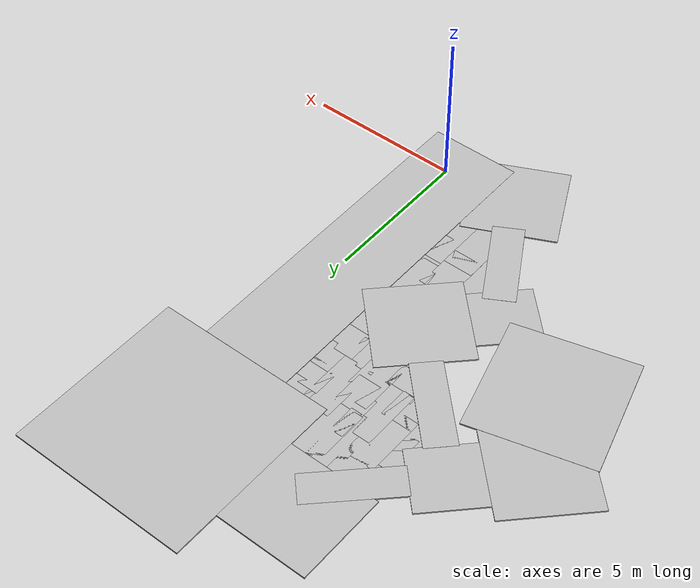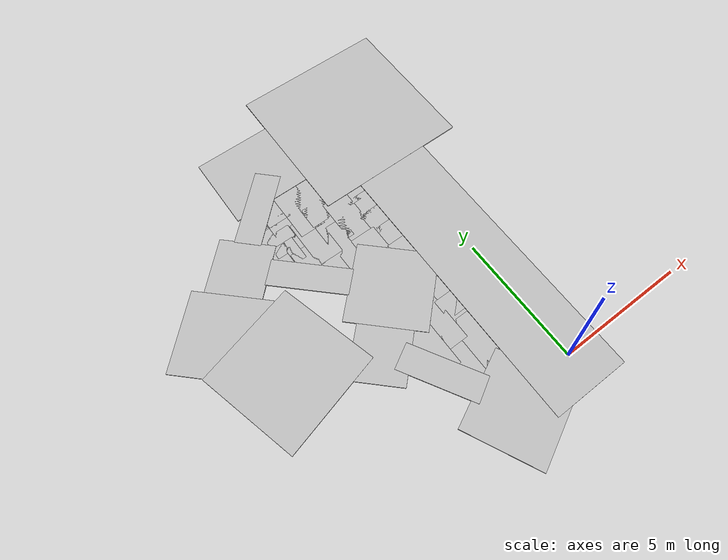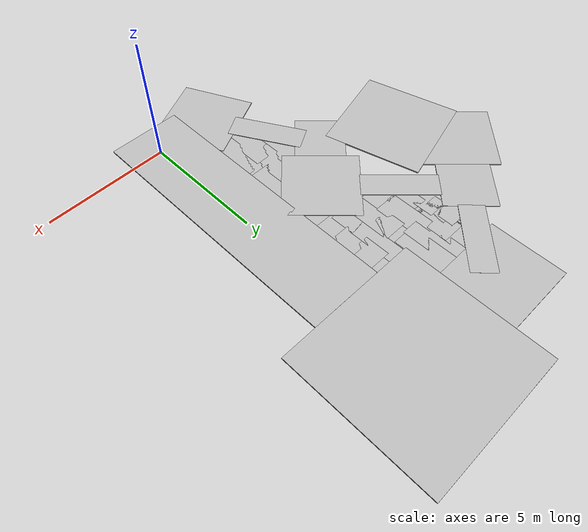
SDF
<sdf version="1.6">
 <world name="default">
  <light name="sun" type="directional">
   <pose>0 0 10 0 -0 0</pose>
   <diffuse>0.8 0.8 0.8 1</diffuse>
   <specular>0.2 0.2 0.2 1</specular>
   <attenuation>
    <range>1000</range>
    <constant>0.9</constant>
    <linear>0.01</linear>
    <quadratic>0.001</quadratic>
   </attenuation>
   <direction>-0.5 0.1 -0.9</direction>
  </light>
  <gravity>0 0 -9.8</gravity>
  <magnetic_field>6e-06 2.3e-05 -4.2e-05</magnetic_field>
  <atmosphere type="adiabatic"/>
  <physics name="default_physics" default="0" type="ode">
   <max_step_size>0.001</max_step_size>
   <real_time_factor>1</real_time_factor>
   <real_time_update_rate>1000</real_time_update_rate>
  </physics>
  <scene><ambient>0.4 0.4 0.4 1</ambient><background>0.7 0.7 0.7 1</background><shadows>1</shadows></scene>
  <audio><device>default</device></audio>
  <spherical_coordinates>
   <surface_model>EARTH_WGS84</surface_model>
   <latitude_deg>0</latitude_deg>
   <longitude_deg>0</longitude_deg>
   <elevation>0</elevation>
   <heading_deg>0</heading_deg>
  </spherical_coordinates>
  <model name="start_w400_black">
   <static>1</static>
   <link name="link">
    <collision name="collision">
     <geometry><box><size>11 3 0.05</size></box></geometry>
     <surface><friction><ode><mu>100</mu><mu2>50</mu2></ode></friction></surface>
    </collision>
    <visual name="visual">
     <cast_shadows>0</cast_shadows>
     <geometry><box><size>11 3 0.05</size></box></geometry>
     <material>
      <script>
       <uri>model://start_w400_black/materials/scripts</uri>
       <uri>model://start_w400_black/materials/textures/</uri>
       <name>start_w400_black/Image</name>
      </script>
     </material>
    </visual>
   </link>
   <pose>-0.193338 4.17342 0 0 -0 1.57079</pose>
  </model>
  <model name="left_curve_r300_a90_00">
   <static>1</static>
   <link name="link">
    <collision name="collision">
     <geometry><box><size>6 6 0.05</size></box></geometry>
     <surface><friction><ode><mu>100</mu><mu2>50</mu2></ode></friction></surface>
    </collision>
    <visual name="visual">
     <cast_shadows>0</cast_shadows>
     <geometry><box><size>6 6 0.05</size></box></geometry>
     <material>
      <script>
       <uri>model://left_curve_r300_a90_00/materials/scripts</uri>
       <uri>model://left_curve_r300_a90_00/materials/textures/</uri>
       <name>left_curve_r300_a90_00/Image</name>
      </script>
     </material>
    </visual>
   </link>
   <pose>-0.193023 12.674 0 0 -0 3.14159</pose>
  </model>
  <model name="left_curve_r150_a45_030">
   <static>1</static>
   <link name="link">
    <collision name="collision">
     <geometry><box><size>3 3 0.05</size></box></geometry>
     <surface><friction><ode><mu>100</mu><mu2>50</mu2></ode></friction></surface>
    </collision>
    <visual name="visual">
     <cast_shadows>0</cast_shadows>
     <geometry><box><size>3 3 0.05</size></box></geometry>
     <material>
      <script>
       <uri>model://left_curve_r150_a45_030/materials/scripts</uri>
       <uri>model://left_curve_r150_a45_030/materials/textures/</uri>
       <name>left_curve_r150_a45_030/Image</name>
      </script>
     </material>
    </visual>
   </link>
   <pose>-4.6927 12.6748 0 0 0 -1.5708</pose>
  </model>
  <model name="stop_crossing">
   <static>1</static>
   <link name="link">
    <collision name="collision">
     <geometry><box><size>2.1 2.1 0.05</size></box></geometry>
     <surface><friction><ode><mu>100</mu><mu2>50</mu2></ode></friction></surface>
    </collision>
    <visual name="visual">
     <cast_shadows>0</cast_shadows>
     <geometry><box><size>2.1 2.1 0.05</size></box></geometry>
     <material>
      <script>
       <uri>model://stop_crossing/materials/scripts</uri>
       <uri>model://stop_crossing/materials/textures/</uri>
       <name>stop_crossing/Image</name>
      </script>
     </material>
    </visual>
   </link>
   <pose>-7.10184 9.42657 0 0 -0 0.789918</pose>
  </model>
  <model name="straight_300_o_25">
   <static>1</static>
   <link name="link">
    <collision name="collision">
     <geometry><box><size>3 1 0.05</size></box></geometry>
     <surface><friction><ode><mu>100</mu><mu2>50</mu2></ode></friction></surface>
    </collision>
    <visual name="visual">
     <cast_shadows>0</cast_shadows>
     <geometry><box><size>3 1 0.05</size></box></geometry>
     <material>
      <script>
       <uri>model://straight_300_o_25/materials/scripts</uri>
       <uri>model://straight_300_o_25/materials/textures/</uri>
       <name>straight_300_o_25/Image</name>
      </script>
     </material>
    </visual>
   </link>
   <pose>-5.32382 11.1876 0.001 0 -0 0.774294</pose>
  </model>
  <model name="straight_300_o_25_0">
   <static>1</static>
   <link name="link">
    <collision name="collision">
     <geometry><box><size>3 1 0.05</size></box></geometry>
     <surface><friction><ode><mu>100</mu><mu2>50</mu2></ode></friction></surface>
    </collision>
    <visual name="visual">
     <cast_shadows>0</cast_shadows>
     <geometry><box><size>3 1 0.05</size></box></geometry>
     <material>
      <script>
       <uri>model://straight_300_o_25/materials/scripts</uri>
       <uri>model://straight_300_o_25/materials/textures/</uri>
       <name>straight_300_o_25/Image</name>
      </script>
     </material>
    </visual>
   </link>
   <pose>-5.32432 7.66399 0.00145 0 0 -0.781825</pose>
  </model>
  <model name="right_curve_r150_a90_o30">
   <static>1</static>
   <link name="link">
    <collision name="collision">
     <geometry><box><size>3 3 0.05</size></box></geometry>
     <surface><friction><ode><mu>100</mu><mu2>50</mu2></ode></friction></surface>
    </collision>
    <visual name="visual">
     <cast_shadows>0</cast_shadows>
     <geometry><box><size>3 3 0.05</size></box></geometry>
     <material>
      <script>
       <uri>model://right_curve_r150_a90_o30/materials/scripts</uri>
       <uri>model://right_curve_r150_a90_o30/materials/textures/</uri>
       <name>right_curve_r150_a90_o30/Image</name>
      </script>
     </material>
    </visual>
   </link>
   <pose>-3.23155 5.58171 0 0 -0 2.35677</pose>
  </model>
  <model name="left_curve_r100_a75_025">
   <static>1</static>
   <link name="link">
    <collision name="collision">
     <geometry><box><size>2 2 0.05</size></box></geometry>
     <surface><friction><ode><mu>100</mu><mu2>50</mu2></ode></friction></surface>
    </collision>
    <visual name="visual">
     <cast_shadows>0</cast_shadows>
     <geometry><box><size>2 2 0.05</size></box></geometry>
     <material>
      <script>
       <uri>model://left_curve_r100_a75_025/materials/scripts</uri>
       <uri>model://left_curve_r100_a75_025/materials/textures/</uri>
       <name>left_curve_r100_a75_025/Image</name>
      </script>
     </material>
    </visual>
   </link>
   <pose>-4.99373 3.81358 0 0 0 -0.782313</pose>
  </model>
  <model name="straight_300_o_25_0_clone">
   <static>1</static>
   <link name="link">
    <collision name="collision">
     <geometry><box><size>3 1 0.05</size></box></geometry>
     <surface><friction><ode><mu>100</mu><mu2>50</mu2></ode></friction></surface>
    </collision>
    <visual name="visual">
     <cast_shadows>0</cast_shadows>
     <geometry><box><size>3 1 0.05</size></box></geometry>
     <material>
      <script>
       <uri>model://straight_300_o_25/materials/scripts</uri>
       <uri>model://straight_300_o_25/materials/textures/</uri>
       <name>straight_300_o_25/Image</name>
      </script>
     </material>
    </visual>
   </link>
   <pose>-3.7385 2.09443 0.00145 0 -0 2.0927</pose>
  </model>
  <model name="right_curve_r150_a90_o30_clone">
   <static>1</static>
   <link name="link">
    <collision name="collision">
     <geometry><box><size>3 3 0.05</size></box></geometry>
     <surface><friction><ode><mu>100</mu><mu2>50</mu2></ode></friction></surface>
    </collision>
    <visual name="visual">
     <cast_shadows>0</cast_shadows>
     <geometry><box><size>3 3 0.05</size></box></geometry>
     <material>
      <script>
       <uri>model://right_curve_r150_a90_o30/materials/scripts</uri>
       <uri>model://right_curve_r150_a90_o30/materials/textures/</uri>
       <name>right_curve_r150_a90_o30/Image</name>
      </script>
     </material>
    </visual>
   </link>
   <pose>-2.46675 -0.335688 -0.002037 0 -0 0.452633</pose>
  </model>
  <model name="black_tile">
   <static>1</static>
   <link name="link">
    <collision name="collision">
     <geometry><plane><normal>0 0 1</normal><size>1 1</size></plane></geometry>
     <surface><friction><ode><mu>100</mu><mu2>50</mu2></ode></friction></surface>
    </collision>
    <visual name="visual">
     <cast_shadows>0</cast_shadows>
     <geometry><plane><normal>0 0 1</normal><size>1 1</size></plane></geometry>
     <material>
      <script>
       <uri>model://black_tile/materials/scripts</uri>
       <uri>model://black_tile/materials/textures/</uri>
       <name>BlackTile/Image</name>
      </script>
     </material>
    </visual>
   </link>
   <pose>-1.89661 6.48288 0 0 -0 0</pose>
  </model>
  <model name="black_tile_0">
   <static>1</static>
   <link name="link">
    <collision name="collision">
     <geometry><plane><normal>0 0 1</normal><size>1 1</size></plane></geometry>
     <surface><friction><ode><mu>100</mu><mu2>50</mu2></ode></friction></surface>
    </collision>
    <visual name="visual">
     <cast_shadows>0</cast_shadows>
     <geometry><plane><normal>0 0 1</normal><size>1 1</size></plane></geometry>
     <material>
      <script>
       <uri>model://black_tile/materials/scripts</uri>
       <uri>model://black_tile/materials/textures/</uri>
       <name>BlackTile/Image</name>
      </script>
     </material>
    </visual>
   </link>
   <pose>-2.06799 7.33697 0 0 -0 0</pose>
  </model>
  <model name="black_tile_1">
   <static>1</static>
   <link name="link">
    <collision name="collision">
     <geometry><plane><normal>0 0 1</normal><size>1 1</size></plane></geometry>
     <surface><friction><ode><mu>100</mu><mu2>50</mu2></ode></friction></surface>
    </collision>
    <visual name="visual">
     <cast_shadows>0</cast_shadows>
     <geometry><plane><normal>0 0 1</normal><size>1 1</size></plane></geometry>
     <material>
      <script>
       <uri>model://black_tile/materials/scripts</uri>
       <uri>model://black_tile/materials/textures/</uri>
       <name>BlackTile/Image</name>
      </script>
     </material>
    </visual>
   </link>
   <pose>-2.84631 7.44404 0 0 -0 0</pose>
  </model>
  <model name="black_tile_2">
   <static>1</static>
   <link name="link">
    <collision name="collision">
     <geometry><plane><normal>0 0 1</normal><size>1 1</size></plane></geometry>
     <surface><friction><ode><mu>100</mu><mu2>50</mu2></ode></friction></surface>
    </collision>
    <visual name="visual">
     <cast_shadows>0</cast_shadows>
     <geometry><plane><normal>0 0 1</normal><size>1 1</size></plane></geometry>
     <material>
      <script>
       <uri>model://black_tile/materials/scripts</uri>
       <uri>model://black_tile/materials/textures/</uri>
       <name>BlackTile/Image</name>
      </script>
     </material>
    </visual>
   </link>
   <pose>-1.95955 8.11796 0 0 -0 0</pose>
  </model>
  <model name="black_tile_3">
   <static>1</static>
   <link name="link">
    <collision name="collision">
     <geometry><plane><normal>0 0 1</normal><size>1 1</size></plane></geometry>
     <surface><friction><ode><mu>100</mu><mu2>50</mu2></ode></friction></surface>
    </collision>
    <visual name="visual">
     <cast_shadows>0</cast_shadows>
     <geometry><plane><normal>0 0 1</normal><size>1 1</size></plane></geometry>
     <material>
      <script>
       <uri>model://black_tile/materials/scripts</uri>
       <uri>model://black_tile/materials/textures/</uri>
       <name>BlackTile/Image</name>
      </script>
     </material>
    </visual>
   </link>
   <pose>-2.08376 8.9151 0 0 -0 0</pose>
  </model>
  <model name="black_tile_4">
   <static>1</static>
   <link name="link">
    <collision name="collision">
     <geometry><plane><normal>0 0 1</normal><size>1 1</size></plane></geometry>
     <surface><friction><ode><mu>100</mu><mu2>50</mu2></ode></friction></surface>
    </collision>
    <visual name="visual">
     <cast_shadows>0</cast_shadows>
     <geometry><plane><normal>0 0 1</normal><size>1 1</size></plane></geometry>
     <material>
      <script>
       <uri>model://black_tile/materials/scripts</uri>
       <uri>model://black_tile/materials/textures/</uri>
       <name>BlackTile/Image</name>
      </script>
     </material>
    </visual>
   </link>
   <pose>-2.04598 9.70217 0 0 -0 0</pose>
  </model>
  <model name="black_tile_w100_h200">
   <static>1</static>
   <link name="link">
    <collision name="collision">
     <geometry><plane><normal>0 0 1</normal><size>1 2</size></plane></geometry>
     <surface><friction><ode><mu>100</mu><mu2>50</mu2></ode></friction></surface>
    </collision>
    <visual name="visual">
     <cast_shadows>0</cast_shadows>
     <geometry><plane><normal>0 0 1</normal><size>1 2</size></plane></geometry>
     <material>
      <script>
       <uri>model://black_tile_w100_h200/materials/scripts</uri>
       <uri>model://black_tile_w100_h200/materials/textures/</uri>
       <name>black_tile_w100_h200/Image</name>
      </script>
     </material>
    </visual>
   </link>
   <pose>-2.83465 8.83131 0 0 -0 0</pose>
  </model>
  <model name="black_tile_w100_h200_0">
   <static>1</static>
   <link name="link">
    <collision name="collision">
     <geometry><plane><normal>0 0 1</normal><size>1 2</size></plane></geometry>
     <surface><friction><ode><mu>100</mu><mu2>50</mu2></ode></friction></surface>
    </collision>
    <visual name="visual">
     <cast_shadows>0</cast_shadows>
     <geometry><plane><normal>0 0 1</normal><size>1 2</size></plane></geometry>
     <material>
      <script>
       <uri>model://black_tile_w100_h200/materials/scripts</uri>
       <uri>model://black_tile_w100_h200/materials/textures/</uri>
       <name>black_tile_w100_h200/Image</name>
      </script>
     </material>
    </visual>
   </link>
   <pose>-3.61819 10.2476 0 0 -0 0</pose>
  </model>
  <model name="black_tile_w100_h200_1">
   <static>1</static>
   <link name="link">
    <collision name="collision">
     <geometry><plane><normal>0 0 1</normal><size>1 2</size></plane></geometry>
     <surface><friction><ode><mu>100</mu><mu2>50</mu2></ode></friction></surface>
    </collision>
    <visual name="visual">
     <cast_shadows>0</cast_shadows>
     <geometry><plane><normal>0 0 1</normal><size>1 2</size></plane></geometry>
     <material>
      <script>
       <uri>model://black_tile_w100_h200/materials/scripts</uri>
       <uri>model://black_tile_w100_h200/materials/textures/</uri>
       <name>black_tile_w100_h200/Image</name>
      </script>
     </material>
    </visual>
   </link>
   <pose>-4.16985 10.184 0 0 -0 0</pose>
  </model>
  <model name="black_tile_w50_h25">
   <static>1</static>
   <link name="link">
    <collision name="collision">
     <geometry><plane><normal>0 0 1</normal><size>0.5 0.25</size></plane></geometry>
     <surface><friction><ode><mu>100</mu><mu2>50</mu2></ode></friction></surface>
    </collision>
    <visual name="visual">
     <cast_shadows>0</cast_shadows>
     <geometry><plane><normal>0 0 1</normal><size>0.5 0.25</size></plane></geometry>
     <material>
      <script>
       <uri>model://black_tile_w50_h25/materials/scripts</uri>
       <uri>model://black_tile_w50_h25/materials/textures/</uri>
       <name>black_tile_w50_h25/Image</name>
      </script>
     </material>
    </visual>
   </link>
   <pose>-5.75441 9.78495 0 0 -0 0</pose>
  </model>
  <model name="black_tile_w50_h25_0">
   <static>1</static>
   <link name="link">
    <collision name="collision">
     <geometry><plane><normal>0 0 1</normal><size>0.5 0.25</size></plane></geometry>
     <surface><friction><ode><mu>100</mu><mu2>50</mu2></ode></friction></surface>
    </collision>
    <visual name="visual">
     <cast_shadows>0</cast_shadows>
     <geometry><plane><normal>0 0 1</normal><size>0.5 0.25</size></plane></geometry>
     <material>
      <script>
       <uri>model://black_tile_w50_h25/materials/scripts</uri>
       <uri>model://black_tile_w50_h25/materials/textures/</uri>
       <name>black_tile_w50_h25/Image</name>
      </script>
     </material>
    </visual>
   </link>
   <pose>-5.62235 9.5593 0 0 -0 0</pose>
  </model>
  <model name="black_tile_w50_h25_1">
   <static>1</static>
   <link name="link">
    <collision name="collision">
     <geometry><plane><normal>0 0 1</normal><size>0.5 0.25</size></plane></geometry>
     <surface><friction><ode><mu>100</mu><mu2>50</mu2></ode></friction></surface>
    </collision>
    <visual name="visual">
     <cast_shadows>0</cast_shadows>
     <geometry><plane><normal>0 0 1</normal><size>0.5 0.25</size></plane></geometry>
     <material>
      <script>
       <uri>model://black_tile_w50_h25/materials/scripts</uri>
       <uri>model://black_tile_w50_h25/materials/textures/</uri>
       <name>black_tile_w50_h25/Image</name>
      </script>
     </material>
    </visual>
   </link>
   <pose>-5.74281 9.14551 0 0 -0 0</pose>
  </model>
  <model name="black_tile_w50_h25_2">
   <static>1</static>
   <link name="link">
    <collision name="collision">
     <geometry><plane><normal>0 0 1</normal><size>0.5 0.25</size></plane></geometry>
     <surface><friction><ode><mu>100</mu><mu2>50</mu2></ode></friction></surface>
    </collision>
    <visual name="visual">
     <cast_shadows>0</cast_shadows>
     <geometry><plane><normal>0 0 1</normal><size>0.5 0.25</size></plane></geometry>
     <material>
      <script>
       <uri>model://black_tile_w50_h25/materials/scripts</uri>
       <uri>model://black_tile_w50_h25/materials/textures/</uri>
       <name>black_tile_w50_h25/Image</name>
      </script>
     </material>
    </visual>
   </link>
   <pose>-5.69207 8.98201 0 0 -0 0</pose>
  </model>
  <model name="black_tile_5">
   <static>1</static>
   <link name="link">
    <collision name="collision">
     <geometry><plane><normal>0 0 1</normal><size>1 1</size></plane></geometry>
     <surface><friction><ode><mu>100</mu><mu2>50</mu2></ode></friction></surface>
    </collision>
    <visual name="visual">
     <cast_shadows>0</cast_shadows>
     <geometry><plane><normal>0 0 1</normal><size>1 1</size></plane></geometry>
     <material>
      <script>
       <uri>model://black_tile/materials/scripts</uri>
       <uri>model://black_tile/materials/textures/</uri>
       <name>BlackTile/Image</name>
      </script>
     </material>
    </visual>
   </link>
   <pose>-5.31462 9.43284 0 0 -0 0</pose>
  </model>
  <model name="black_tile_w100_h200_2">
   <static>1</static>
   <link name="link">
    <collision name="collision">
     <geometry><plane><normal>0 0 1</normal><size>1 2</size></plane></geometry>
     <surface><friction><ode><mu>100</mu><mu2>50</mu2></ode></friction></surface>
    </collision>
    <visual name="visual">
     <cast_shadows>0</cast_shadows>
     <geometry><plane><normal>0 0 1</normal><size>1 2</size></plane></geometry>
     <material>
      <script>
       <uri>model://black_tile_w100_h200/materials/scripts</uri>
       <uri>model://black_tile_w100_h200/materials/textures/</uri>
       <name>black_tile_w100_h200/Image</name>
      </script>
     </material>
    </visual>
   </link>
   <pose>-3.49866 7.97632 0 0 -0 0</pose>
  </model>
  <model name="black_tile_w100_h200_3">
   <static>1</static>
   <link name="link">
    <collision name="collision">
     <geometry><plane><normal>0 0 1</normal><size>1 2</size></plane></geometry>
     <surface><friction><ode><mu>100</mu><mu2>50</mu2></ode></friction></surface>
    </collision>
    <visual name="visual">
     <cast_shadows>0</cast_shadows>
     <geometry><plane><normal>0 0 1</normal><size>1 2</size></plane></geometry>
     <material>
      <script>
       <uri>model://black_tile_w100_h200/materials/scripts</uri>
       <uri>model://black_tile_w100_h200/materials/textures/</uri>
       <name>black_tile_w100_h200/Image</name>
      </script>
     </material>
    </visual>
   </link>
   <pose>-3.58384 9.12114 0 0 -0 0</pose>
  </model>
  <model name="black_tile_w100_h200_4">
   <static>1</static>
   <link name="link">
    <collision name="collision">
     <geometry><plane><normal>0 0 1</normal><size>1 2</size></plane></geometry>
     <surface><friction><ode><mu>100</mu><mu2>50</mu2></ode></friction></surface>
    </collision>
    <visual name="visual">
     <cast_shadows>0</cast_shadows>
     <geometry><plane><normal>0 0 1</normal><size>1 2</size></plane></geometry>
     <material>
      <script>
       <uri>model://black_tile_w100_h200/materials/scripts</uri>
       <uri>model://black_tile_w100_h200/materials/textures/</uri>
       <name>black_tile_w100_h200/Image</name>
      </script>
     </material>
    </visual>
   </link>
   <pose>-4.29271 8.82942 0 0 -0 0</pose>
  </model>
  <model name="black_tile_w100_h200_5">
   <static>1</static>
   <link name="link">
    <collision name="collision">
     <geometry><plane><normal>0 0 1</normal><size>1 2</size></plane></geometry>
     <surface><friction><ode><mu>100</mu><mu2>50</mu2></ode></friction></surface>
    </collision>
    <visual name="visual">
     <cast_shadows>0</cast_shadows>
     <geometry><plane><normal>0 0 1</normal><size>1 2</size></plane></geometry>
     <material>
      <script>
       <uri>model://black_tile_w100_h200/materials/scripts</uri>
       <uri>model://black_tile_w100_h200/materials/textures/</uri>
       <name>black_tile_w100_h200/Image</name>
      </script>
     </material>
    </visual>
   </link>
   <pose>-4.93356 9.47202 0 0 -0 0</pose>
  </model>
  <model name="black_tile_w50_h25_3">
   <static>1</static>
   <link name="link">
    <collision name="collision">
     <geometry><plane><normal>0 0 1</normal><size>0.5 0.25</size></plane></geometry>
     <surface><friction><ode><mu>100</mu><mu2>50</mu2></ode></friction></surface>
    </collision>
    <visual name="visual">
     <cast_shadows>0</cast_shadows>
     <geometry><plane><normal>0 0 1</normal><size>0.5 0.25</size></plane></geometry>
     <material>
      <script>
       <uri>model://black_tile_w50_h25/materials/scripts</uri>
       <uri>model://black_tile_w50_h25/materials/textures/</uri>
       <name>black_tile_w50_h25/Image</name>
      </script>
     </material>
    </visual>
   </link>
   <pose>-5.27762 10.275 0 0 -0 0</pose>
  </model>
  <model name="black_tile_w50_h25_4">
   <static>1</static>
   <link name="link">
    <collision name="collision">
     <geometry><plane><normal>0 0 1</normal><size>0.5 0.25</size></plane></geometry>
     <surface><friction><ode><mu>100</mu><mu2>50</mu2></ode></friction></surface>
    </collision>
    <visual name="visual">
     <cast_shadows>0</cast_shadows>
     <geometry><plane><normal>0 0 1</normal><size>0.5 0.25</size></plane></geometry>
     <material>
      <script>
       <uri>model://black_tile_w50_h25/materials/scripts</uri>
       <uri>model://black_tile_w50_h25/materials/textures/</uri>
       <name>black_tile_w50_h25/Image</name>
      </script>
     </material>
    </visual>
   </link>
   <pose>-5.53375 10.0402 0 0 -0 0</pose>
  </model>
  <model name="black_tile_w50_h25_5">
   <static>1</static>
   <link name="link">
    <collision name="collision">
     <geometry><plane><normal>0 0 1</normal><size>0.5 0.25</size></plane></geometry>
     <surface><friction><ode><mu>100</mu><mu2>50</mu2></ode></friction></surface>
    </collision>
    <visual name="visual">
     <cast_shadows>0</cast_shadows>
     <geometry><plane><normal>0 0 1</normal><size>0.5 0.25</size></plane></geometry>
     <material>
      <script>
       <uri>model://black_tile_w50_h25/materials/scripts</uri>
       <uri>model://black_tile_w50_h25/materials/textures/</uri>
       <name>black_tile_w50_h25/Image</name>
      </script>
     </material>
    </visual>
   </link>
   <pose>-5.44236 10.1665 0 0 -0 0</pose>
  </model>
  <model name="black_tile_6">
   <static>1</static>
   <link name="link">
    <collision name="collision">
     <geometry><plane><normal>0 0 1</normal><size>1 1</size></plane></geometry>
     <surface><friction><ode><mu>100</mu><mu2>50</mu2></ode></friction></surface>
    </collision>
    <visual name="visual">
     <cast_shadows>0</cast_shadows>
     <geometry><plane><normal>0 0 1</normal><size>1 1</size></plane></geometry>
     <material>
      <script>
       <uri>model://black_tile/materials/scripts</uri>
       <uri>model://black_tile/materials/textures/</uri>
       <name>BlackTile/Image</name>
      </script>
     </material>
    </visual>
   </link>
   <pose>-4.90971 8.30596 0 0 -0 0</pose>
  </model>
  <model name="black_tile_7">
   <static>1</static>
   <link name="link">
    <collision name="collision">
     <geometry><plane><normal>0 0 1</normal><size>1 1</size></plane></geometry>
     <surface><friction><ode><mu>100</mu><mu2>50</mu2></ode></friction></surface>
    </collision>
    <visual name="visual">
     <cast_shadows>0</cast_shadows>
     <geometry><plane><normal>0 0 1</normal><size>1 1</size></plane></geometry>
     <material>
      <script>
       <uri>model://black_tile/materials/scripts</uri>
       <uri>model://black_tile/materials/textures/</uri>
       <name>BlackTile/Image</name>
      </script>
     </material>
    </visual>
   </link>
   <pose>-5.47409 8.9078 0 0 -0 0</pose>
  </model>
  <model name="black_tile_8">
   <static>1</static>
   <link name="link">
    <collision name="collision">
     <geometry><plane><normal>0 0 1</normal><size>1 1</size></plane></geometry>
     <surface><friction><ode><mu>100</mu><mu2>50</mu2></ode></friction></surface>
    </collision>
    <visual name="visual">
     <cast_shadows>0</cast_shadows>
     <geometry><plane><normal>0 0 1</normal><size>1 1</size></plane></geometry>
     <material>
      <script>
       <uri>model://black_tile/materials/scripts</uri>
       <uri>model://black_tile/materials/textures/</uri>
       <name>BlackTile/Image</name>
      </script>
     </material>
    </visual>
   </link>
   <pose>-5.64007 9.72669 0 0 -0 0</pose>
  </model>
  <model name="black_tile_9">
   <static>1</static>
   <link name="link">
    <collision name="collision">
     <geometry><plane><normal>0 0 1</normal><size>1 1</size></plane></geometry>
     <surface><friction><ode><mu>100</mu><mu2>50</mu2></ode></friction></surface>
    </collision>
    <visual name="visual">
     <cast_shadows>0</cast_shadows>
     <geometry><plane><normal>0 0 1</normal><size>1 1</size></plane></geometry>
     <material>
      <script>
       <uri>model://black_tile/materials/scripts</uri>
       <uri>model://black_tile/materials/textures/</uri>
       <name>BlackTile/Image</name>
      </script>
     </material>
    </visual>
   </link>
   <pose>-4.338 7.56158 0 0 -0 0</pose>
  </model>
  <model name="black_tile_10">
   <static>1</static>
   <link name="link">
    <collision name="collision">
     <geometry><plane><normal>0 0 1</normal><size>1 1</size></plane></geometry>
     <surface><friction><ode><mu>100</mu><mu2>50</mu2></ode></friction></surface>
    </collision>
    <visual name="visual">
     <cast_shadows>0</cast_shadows>
     <geometry><plane><normal>0 0 1</normal><size>1 1</size></plane></geometry>
     <material>
      <script>
       <uri>model://black_tile/materials/scripts</uri>
       <uri>model://black_tile/materials/textures/</uri>
       <name>BlackTile/Image</name>
      </script>
     </material>
    </visual>
   </link>
   <pose>-4.91652 10.7155 0 0 -0 0</pose>
  </model>
  <model name="black_tile_w100_h200_6">
   <static>1</static>
   <link name="link">
    <collision name="collision">
     <geometry><plane><normal>0 0 1</normal><size>1 2</size></plane></geometry>
     <surface><friction><ode><mu>100</mu><mu2>50</mu2></ode></friction></surface>
    </collision>
    <visual name="visual">
     <cast_shadows>0</cast_shadows>
     <geometry><plane><normal>0 0 1</normal><size>1 2</size></plane></geometry>
     <material>
      <script>
       <uri>model://black_tile_w100_h200/materials/scripts</uri>
       <uri>model://black_tile_w100_h200/materials/textures/</uri>
       <name>black_tile_w100_h200/Image</name>
      </script>
     </material>
    </visual>
   </link>
   <pose>-2.00695 2.27747 0 0 -0 0</pose>
  </model>
  <model name="black_tile_w100_h200_7">
   <static>1</static>
   <link name="link">
    <collision name="collision">
     <geometry><plane><normal>0 0 1</normal><size>1 2</size></plane></geometry>
     <surface><friction><ode><mu>100</mu><mu2>50</mu2></ode></friction></surface>
    </collision>
    <visual name="visual">
     <cast_shadows>0</cast_shadows>
     <geometry><plane><normal>0 0 1</normal><size>1 2</size></plane></geometry>
     <material>
      <script>
       <uri>model://black_tile_w100_h200/materials/scripts</uri>
       <uri>model://black_tile_w100_h200/materials/textures/</uri>
       <name>black_tile_w100_h200/Image</name>
      </script>
     </material>
    </visual>
   </link>
   <pose>-2.76508 2.10798 0 0 -0 0</pose>
  </model>
  <model name="black_tile_w100_h200_8">
   <static>1</static>
   <link name="link">
    <collision name="collision">
     <geometry><plane><normal>0 0 1</normal><size>1 2</size></plane></geometry>
     <surface><friction><ode><mu>100</mu><mu2>50</mu2></ode></friction></surface>
    </collision>
    <visual name="visual">
     <cast_shadows>0</cast_shadows>
     <geometry><plane><normal>0 0 1</normal><size>1 2</size></plane></geometry>
     <material>
      <script>
       <uri>model://black_tile_w100_h200/materials/scripts</uri>
       <uri>model://black_tile_w100_h200/materials/textures/</uri>
       <name>black_tile_w100_h200/Image</name>
      </script>
     </material>
    </visual>
   </link>
   <pose>-3.51629 2.98587 0 0 -0 0</pose>
  </model>
  <model name="black_tile_w100_h200_9">
   <static>1</static>
   <link name="link">
    <collision name="collision">
     <geometry><plane><normal>0 0 1</normal><size>1 2</size></plane></geometry>
     <surface><friction><ode><mu>100</mu><mu2>50</mu2></ode></friction></surface>
    </collision>
    <visual name="visual">
     <cast_shadows>0</cast_shadows>
     <geometry><plane><normal>0 0 1</normal><size>1 2</size></plane></geometry>
     <material>
      <script>
       <uri>model://black_tile_w100_h200/materials/scripts</uri>
       <uri>model://black_tile_w100_h200/materials/textures/</uri>
       <name>black_tile_w100_h200/Image</name>
      </script>
     </material>
    </visual>
   </link>
   <pose>-2.77055 3.55622 0 0 -0 0</pose>
  </model>
  <model name="black_tile_w100_h200_10">
   <static>1</static>
   <link name="link">
    <collision name="collision">
     <geometry><plane><normal>0 0 1</normal><size>1 2</size></plane></geometry>
     <surface><friction><ode><mu>100</mu><mu2>50</mu2></ode></friction></surface>
    </collision>
    <visual name="visual">
     <cast_shadows>0</cast_shadows>
     <geometry><plane><normal>0 0 1</normal><size>1 2</size></plane></geometry>
     <material>
      <script>
       <uri>model://black_tile_w100_h200/materials/scripts</uri>
       <uri>model://black_tile_w100_h200/materials/textures/</uri>
       <name>black_tile_w100_h200/Image</name>
      </script>
     </material>
    </visual>
   </link>
   <pose>-2.05404 4.40072 0 0 -0 0</pose>
  </model>
  <model name="black_tile_w100_h200_11">
   <static>1</static>
   <link name="link">
    <collision name="collision">
     <geometry><plane><normal>0 0 1</normal><size>1 2</size></plane></geometry>
     <surface><friction><ode><mu>100</mu><mu2>50</mu2></ode></friction></surface>
    </collision>
    <visual name="visual">
     <cast_shadows>0</cast_shadows>
     <geometry><plane><normal>0 0 1</normal><size>1 2</size></plane></geometry>
     <material>
      <script>
       <uri>model://black_tile_w100_h200/materials/scripts</uri>
       <uri>model://black_tile_w100_h200/materials/textures/</uri>
       <name>black_tile_w100_h200/Image</name>
      </script>
     </material>
    </visual>
   </link>
   <pose>-1.89909 3.22491 0 0 -0 0</pose>
  </model>
  <model name="left_curve_r150_a60_020">
   <static>1</static>
   <link name="link">
    <collision name="collision">
     <geometry><box><size>3 3 0.05</size></box></geometry>
     <surface><friction><ode><mu>100</mu><mu2>50</mu2></ode></friction></surface>
    </collision>
    <visual name="visual">
     <cast_shadows>0</cast_shadows>
     <geometry><box><size>3 3 0.05</size></box></geometry>
     <material>
      <script>
       <uri>model://left_curve_r150_a60_020/materials/scripts</uri>
       <uri>model://left_curve_r150_a60_020/materials/textures/</uri>
       <name>left_curve_r150_a60_020/Image</name>
      </script>
     </material>
    </visual>
   </link>
   <pose>-8.89192 7.61762 0.001 0 0 -0.779843</pose>
  </model>
  <model name="right_curve_r200_a90_o20">
   <static>1</static>
   <link name="link">
    <collision name="collision">
     <geometry><box><size>4 4 0.05</size></box></geometry>
     <surface><friction><ode><mu>100</mu><mu2>50</mu2></ode></friction></surface>
    </collision>
    <visual name="visual">
     <cast_shadows>0</cast_shadows>
     <geometry><box><size>4 4 0.05</size></box></geometry>
     <material>
      <script>
       <uri>model://right_curve_r200_a90_o20/materials/scripts</uri>
       <uri>model://right_curve_r200_a90_o20/materials/textures/</uri>
       <name>right_curve_r200_a90_o20/Image</name>
      </script>
     </material>
    </visual>
   </link>
   <pose>-7.6945 5.3036 0.002 0 -0 1.83523</pose>
  </model>
 </world>
</sdf>
